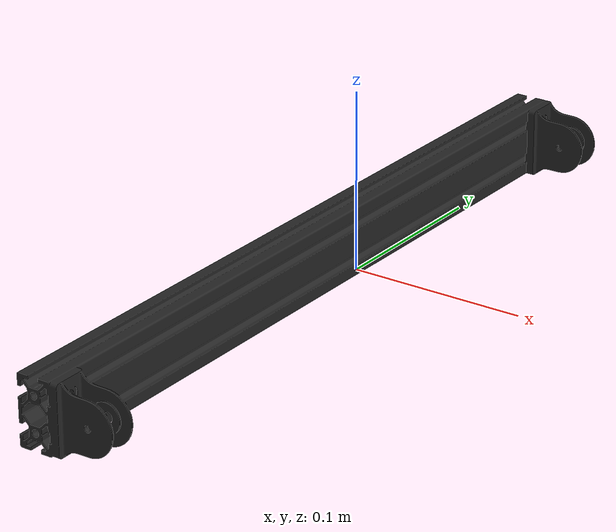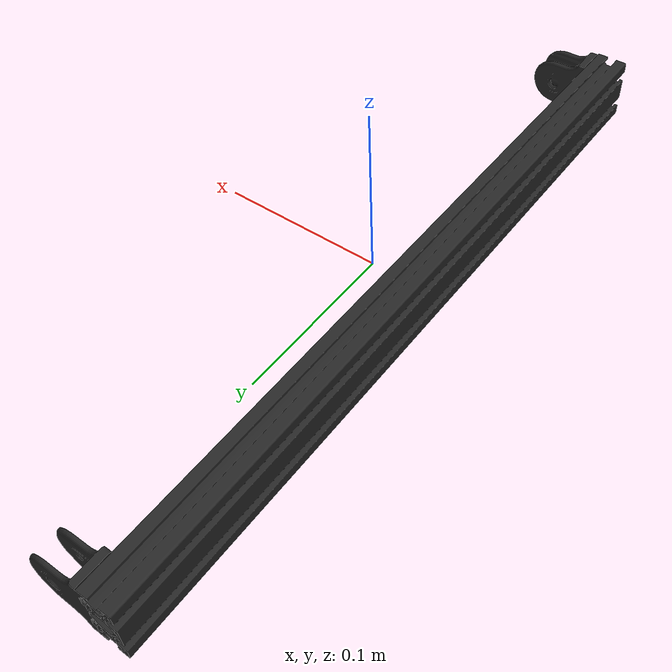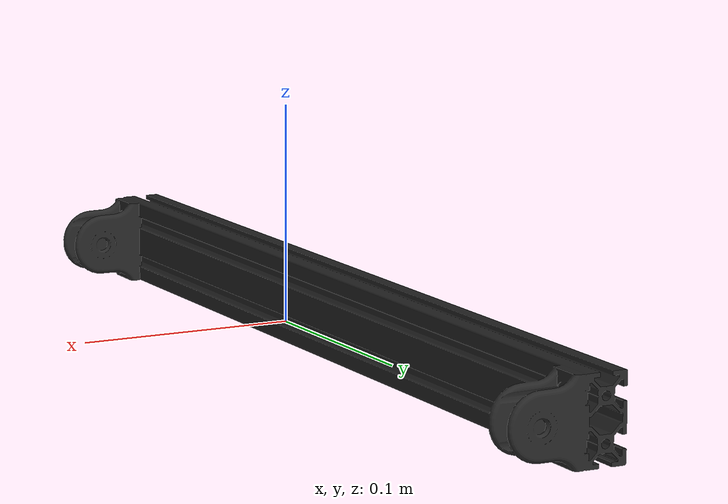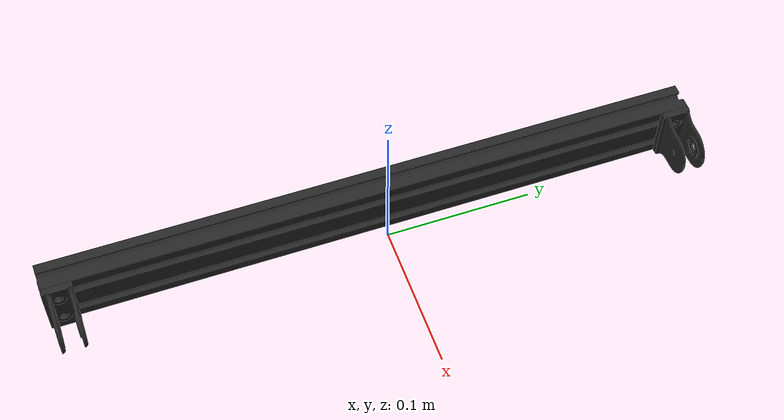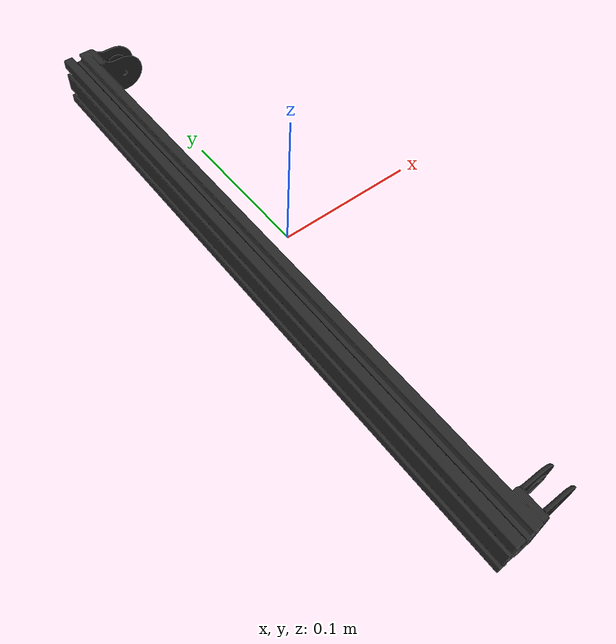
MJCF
<mujoco model="monitor_hinge_top">
  <default>
    <default class="visual">
      <geom group="2" type="mesh" contype="0" conaffinity="0"/>
    </default>
    <default class="collision">
      <geom group="3" type="mesh"/>
    </default>
  </default>
  <asset>
    <material name="mtl_monitor_hinge_top" specular="0.20000000000000004" shininess="1.0" rgba="0.14901961 0.14901961 0.14901961 1.0"/>
    <mesh file="monitor_hinge_top.obj"/>
  </asset>
  <worldbody>
    <body name="monitor_hinge_top">
      <geom material="mtl_monitor_hinge_top" mesh="monitor_hinge_top" class="visual"/>
      <geom mesh="monitor_hinge_top" class="collision"/>
    </body>
  </worldbody>
</mujoco>
